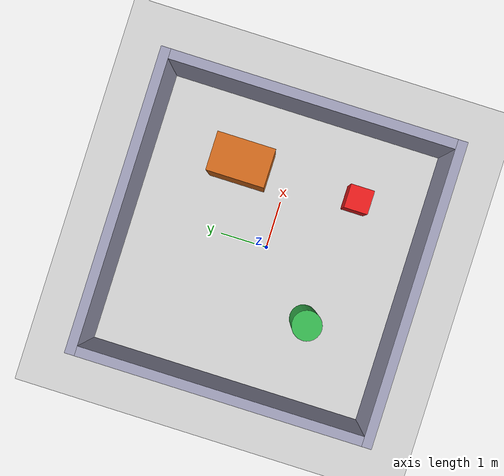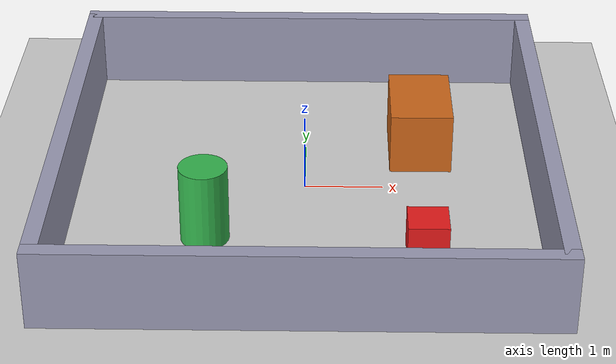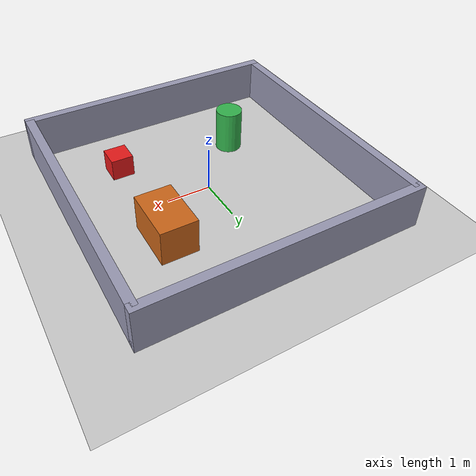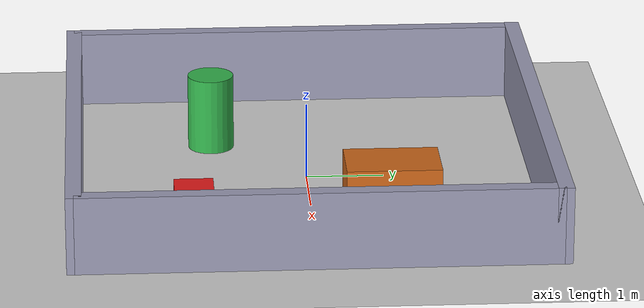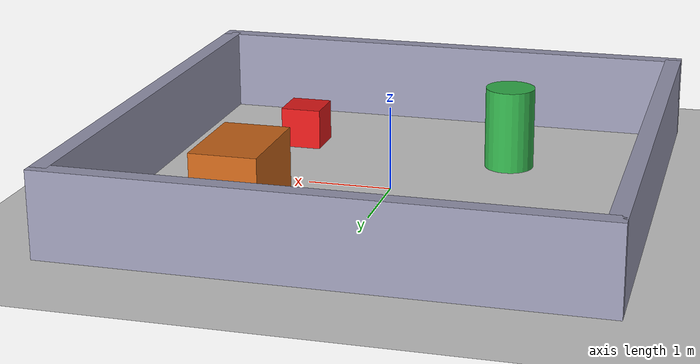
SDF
<?xml version="1.0" ?>
<sdf version="1.6">
  <world name="lab_world">
    <!-- Sun and Ground -->
    <include>
      <uri>model://sun</uri>
    </include>
    <include>
      <uri>model://ground_plane</uri>
    </include>

    <!-- Room Walls (6m x 6m x 1m) -->
    <!-- North Wall -->
    <model name="wall_north">
      <static>true</static>
      <pose>0 3 0.5 0 0 0</pose>
      <link name="link">
        <collision name="col">
          <geometry><box><size>6.2 0.2 1.0</size></box></geometry>
        </collision>
        <visual name="vis">
          <geometry><box><size>6.2 0.2 1.0</size></box></geometry>
          <material><ambient>0.6 0.6 0.7 1</ambient><diffuse>0.6 0.6 0.7 1</diffuse></material>
        </visual>
      </link>
    </model>

    <!-- South Wall -->
    <model name="wall_south">
      <static>true</static>
      <pose>0 -3 0.5 0 0 0</pose>
      <link name="link">
        <collision name="col">
          <geometry><box><size>6.2 0.2 1.0</size></box></geometry>
        </collision>
        <visual name="vis">
          <geometry><box><size>6.2 0.2 1.0</size></box></geometry>
          <material><ambient>0.6 0.6 0.7 1</ambient><diffuse>0.6 0.6 0.7 1</diffuse></material>
        </visual>
      </link>
    </model>

    <!-- East Wall -->
    <model name="wall_east">
      <static>true</static>
      <pose>3 0 0.5 0 0 0</pose>
      <link name="link">
        <collision name="col">
          <geometry><box><size>0.2 6.0 1.0</size></box></geometry>
        </collision>
        <visual name="vis">
          <geometry><box><size>0.2 6.0 1.0</size></box></geometry>
          <material><ambient>0.6 0.6 0.7 1</ambient><diffuse>0.6 0.6 0.7 1</diffuse></material>
        </visual>
      </link>
    </model>

    <!-- West Wall -->
    <model name="wall_west">
      <static>true</static>
      <pose>-3 0 0.5 0 0 0</pose>
      <link name="link">
        <collision name="col">
          <geometry><box><size>0.2 6.0 1.0</size></box></geometry>
        </collision>
        <visual name="vis">
          <geometry><box><size>0.2 6.0 1.0</size></box></geometry>
          <material><ambient>0.6 0.6 0.7 1</ambient><diffuse>0.6 0.6 0.7 1</diffuse></material>
        </visual>
      </link>
    </model>

    <!-- Obstacle 1: Box (Meja Lab) -->
    <model name="lab_table">
      <static>true</static>
      <pose>1.5 1.0 0.4 0 0 0</pose>
      <link name="link">
        <collision name="col"><geometry><box><size>0.8 1.2 0.8</size></box></geometry></collision>
        <visual name="vis">
          <geometry><box><size>0.8 1.2 0.8</size></box></geometry>
          <material><ambient>0.8 0.4 0.1 1</ambient><diffuse>0.8 0.4 0.1 1</diffuse></material>
        </visual>
      </link>
    </model>

    <!-- Obstacle 2: Cylinder (Pilar Lab) -->
    <model name="lab_pillar">
      <static>true</static>
      <pose>-1.2 -1.2 0.5 0 0 0</pose>
      <link name="link">
        <collision name="col"><geometry><cylinder><radius>0.3</radius><length>1.0</length></cylinder></geometry></collision>
        <visual name="vis">
          <geometry><cylinder><radius>0.3</radius><length>1.0</length></cylinder></geometry>
          <material><ambient>0.2 0.7 0.3 1</ambient><diffuse>0.2 0.7 0.3 1</diffuse></material>
        </visual>
      </link>
    </model>

    <!-- Obstacle 3: Target Box (Objek Deteksi) -->
    <model name="target_box">
      <static>true</static>
      <pose>1.5 -1.5 0.25 0 0 0</pose>
      <link name="link">
        <collision name="col"><geometry><box><size>0.5 0.5 0.5</size></box></geometry></collision>
        <visual name="vis">
          <geometry><box><size>0.5 0.5 0.5</size></box></geometry>
          <material><ambient>0.9 0.1 0.1 1</ambient><diffuse>0.9 0.1 0.1 1</diffuse></material>
        </visual>
      </link>
    </model>

  </world>
</sdf>
